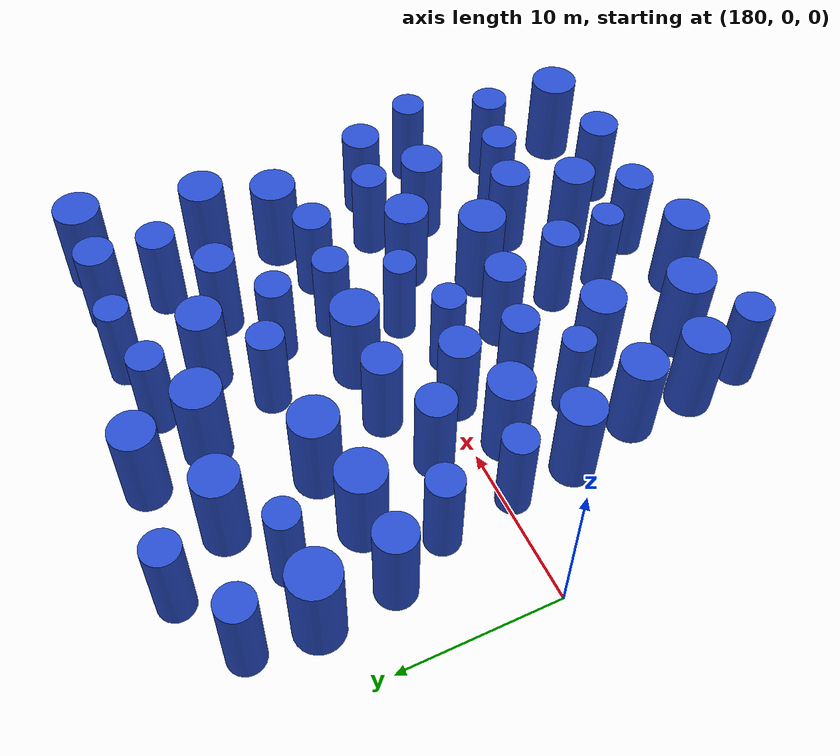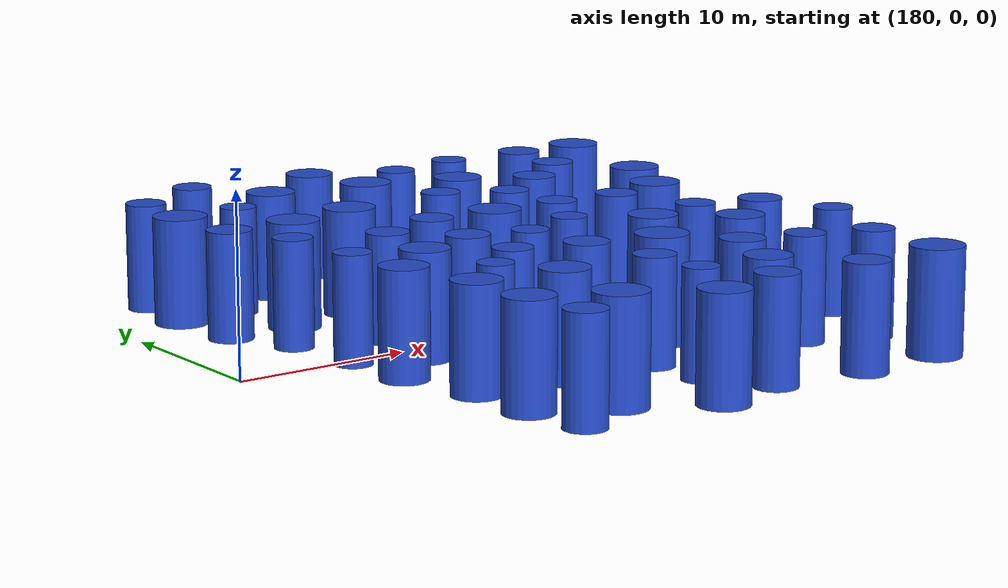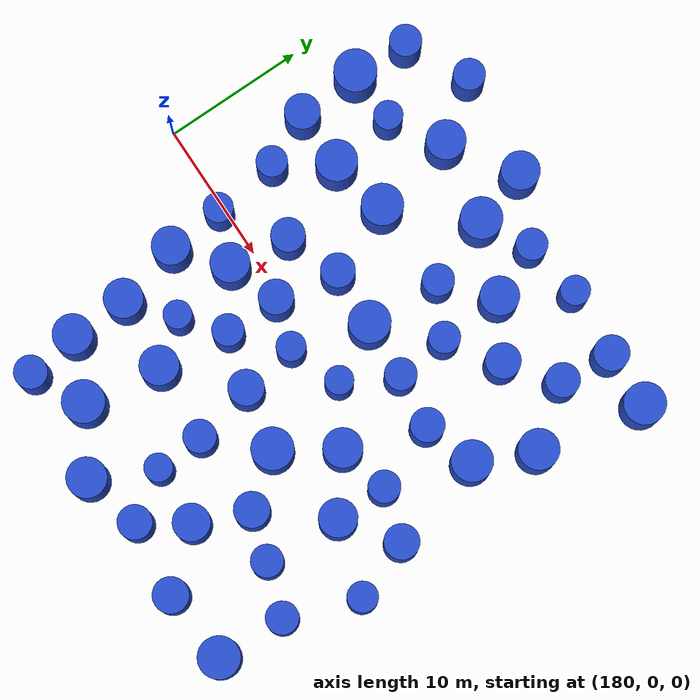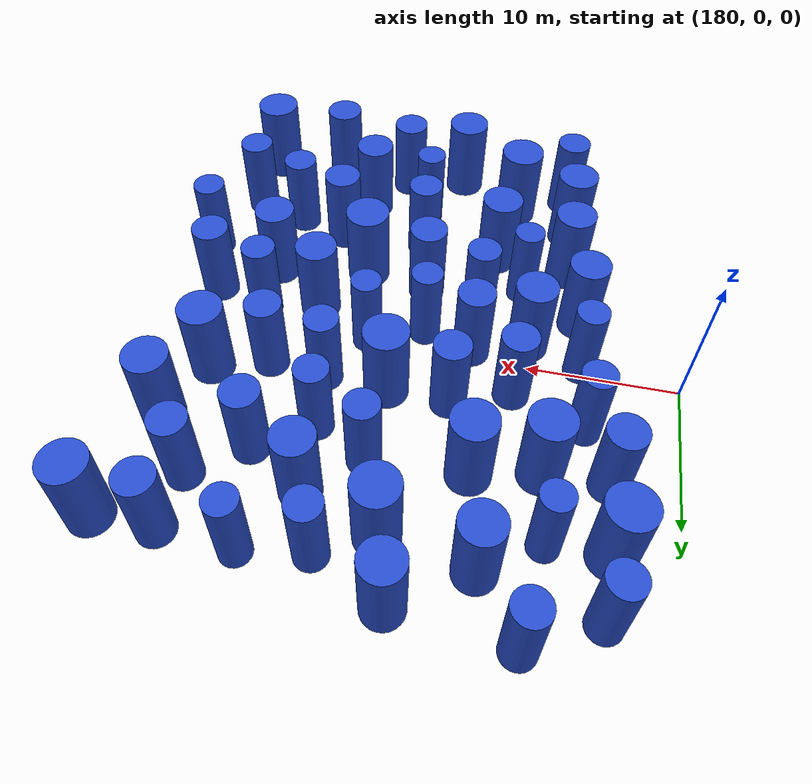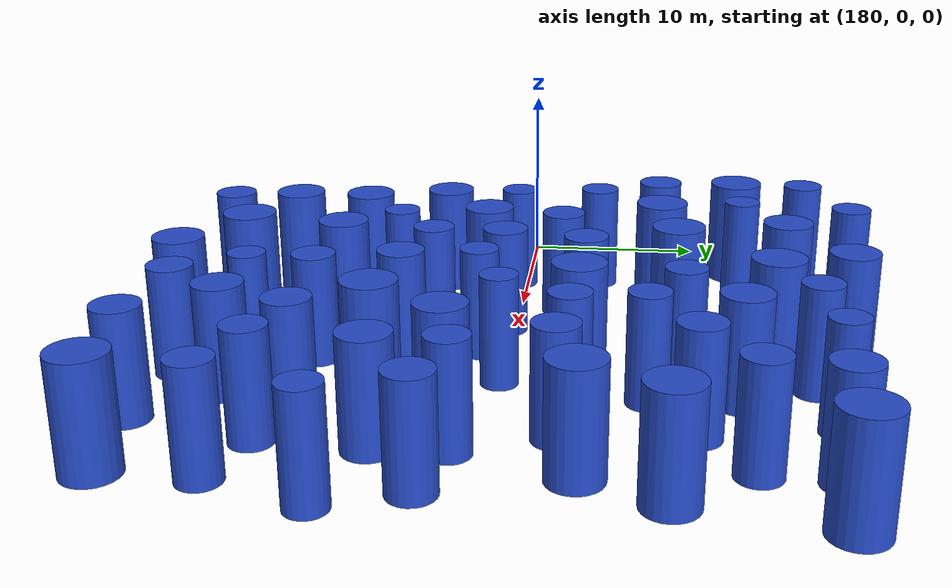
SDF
<sdf version="1.7">
 <world name="default">
  <model name="3">
   <static>1</static>
   <link name="link">
    <inertial>
     <mass>2</mass>
     <inertia><ixx>6.94931</ixx><ixy>0</ixy><ixz>0</ixz><iyy>6.94931</iyy><iyz>0</iyz><izz>1.89861</izz></inertia>
    </inertial>
    <collision name="collision">
     <geometry><cylinder><length>6</length><radius>1.3779</radius></cylinder></geometry>
     <surface><contact><collide_without_contact>1</collide_without_contact></contact></surface>
    </collision>
    <visual name="visual">
     <geometry><cylinder><length>6</length><radius>1.3779</radius></cylinder></geometry>
     <material>
      <script><uri>file://media/materials/scripts/gazebo.material</uri><name>Gazebo/Blue</name></script>
     </material>
    </visual>
    <gravity>0</gravity>
   </link>
   <pose>188.184 -9.29219 3 0 -0 0</pose>
  </model>
  <model name="23">
   <static>1</static>
   <link name="link">
    <inertial>
     <mass>2</mass>
     <inertia><ixx>6.54203</ixx><ixy>0</ixy><ixz>0</ixz><iyy>6.54203</iyy><iyz>0</iyz><izz>1.08407</izz></inertia>
    </inertial>
    <collision name="collision">
     <geometry><cylinder><length>6</length><radius>1.04119</radius></cylinder></geometry>
     <surface><contact><collide_without_contact>1</collide_without_contact></contact></surface>
    </collision>
    <visual name="visual">
     <geometry><cylinder><length>6</length><radius>1.04119</radius></cylinder></geometry>
     <material>
      <script><uri>file://media/materials/scripts/gazebo.material</uri><name>Gazebo/Blue</name></script>
     </material>
    </visual>
    <gravity>0</gravity>
   </link>
   <pose>186.6 -0.514004 3 0 -0 0</pose>
  </model>
  <model name="27">
   <static>1</static>
   <link name="link">
    <inertial>
     <mass>2</mass>
     <inertia><ixx>6.80277</ixx><ixy>0</ixy><ixz>0</ixz><iyy>6.80277</iyy><iyz>0</iyz><izz>1.60554</izz></inertia>
    </inertial>
    <collision name="collision">
     <geometry><cylinder><length>6</length><radius>1.2671</radius></cylinder></geometry>
     <surface><contact><collide_without_contact>1</collide_without_contact></contact></surface>
    </collision>
    <visual name="visual">
     <geometry><cylinder><length>6</length><radius>1.2671</radius></cylinder></geometry>
     <material>
      <script><uri>file://media/materials/scripts/gazebo.material</uri><name>Gazebo/Blue</name></script>
     </material>
    </visual>
    <gravity>0</gravity>
   </link>
   <pose>206.719 -17.7327 3 0 -0 0</pose>
  </model>
  <model name="45">
   <static>1</static>
   <link name="link">
    <inertial>
     <mass>2</mass>
     <inertia><ixx>6.62687</ixx><ixy>0</ixy><ixz>0</ixz><iyy>6.62687</iyy><iyz>0</iyz><izz>1.25375</izz></inertia>
    </inertial>
    <collision name="collision">
     <geometry><cylinder><length>6</length><radius>1.11971</radius></cylinder></geometry>
     <surface><contact><collide_without_contact>1</collide_without_contact></contact></surface>
    </collision>
    <visual name="visual">
     <geometry><cylinder><length>6</length><radius>1.11971</radius></cylinder></geometry>
     <material>
      <script><uri>file://media/materials/scripts/gazebo.material</uri><name>Gazebo/Blue</name></script>
     </material>
    </visual>
    <gravity>0</gravity>
   </link>
   <pose>193.912 -4.58232 3 0 -0 0</pose>
  </model>
  <model name="47">
   <static>1</static>
   <link name="link">
    <inertial>
     <mass>2</mass>
     <inertia><ixx>6.73098</ixx><ixy>0</ixy><ixz>0</ixz><iyy>6.73098</iyy><iyz>0</iyz><izz>1.46195</izz></inertia>
    </inertial>
    <collision name="collision">
     <geometry><cylinder><length>6</length><radius>1.20911</radius></cylinder></geometry>
     <surface><contact><collide_without_contact>1</collide_without_contact></contact></surface>
    </collision>
    <visual name="visual">
     <geometry><cylinder><length>6</length><radius>1.20911</radius></cylinder></geometry>
     <material>
      <script><uri>file://media/materials/scripts/gazebo.material</uri><name>Gazebo/Blue</name></script>
     </material>
    </visual>
    <gravity>0</gravity>
   </link>
   <pose>201.267 -17.0328 3 0 -0 0</pose>
  </model>
  <model name="51">
   <static>1</static>
   <link name="link">
    <inertial>
     <mass>2</mass>
     <inertia><ixx>7.12457</ixx><ixy>0</ixy><ixz>0</ixz><iyy>7.12457</iyy><iyz>0</iyz><izz>2.24913</izz></inertia>
    </inertial>
    <collision name="collision">
     <geometry><cylinder><length>6</length><radius>1.49971</radius></cylinder></geometry>
     <surface><contact><collide_without_contact>1</collide_without_contact></contact></surface>
    </collision>
    <visual name="visual">
     <geometry><cylinder><length>6</length><radius>1.49971</radius></cylinder></geometry>
     <material>
      <script><uri>file://media/materials/scripts/gazebo.material</uri><name>Gazebo/Blue</name></script>
     </material>
    </visual>
    <gravity>0</gravity>
   </link>
   <pose>192.527 -15.412 3 0 -0 0</pose>
  </model>
  <model name="58">
   <static>1</static>
   <link name="link">
    <inertial>
     <mass>2</mass>
     <inertia><ixx>6.79435</ixx><ixy>0</ixy><ixz>0</ixz><iyy>6.79435</iyy><iyz>0</iyz><izz>1.58869</izz></inertia>
    </inertial>
    <collision name="collision">
     <geometry><cylinder><length>6</length><radius>1.26043</radius></cylinder></geometry>
     <surface><contact><collide_without_contact>1</collide_without_contact></contact></surface>
    </collision>
    <visual name="visual">
     <geometry><cylinder><length>6</length><radius>1.26043</radius></cylinder></geometry>
     <material>
      <script><uri>file://media/materials/scripts/gazebo.material</uri><name>Gazebo/Blue</name></script>
     </material>
    </visual>
    <gravity>0</gravity>
   </link>
   <pose>197.855 -5.73232 3 0 -0 0</pose>
  </model>
  <model name="64">
   <static>1</static>
   <link name="link">
    <inertial>
     <mass>2</mass>
     <inertia><ixx>6.68343</ixx><ixy>0</ixy><ixz>0</ixz><iyy>6.68343</iyy><iyz>0</iyz><izz>1.36686</izz></inertia>
    </inertial>
    <collision name="collision">
     <geometry><cylinder><length>6</length><radius>1.16913</radius></cylinder></geometry>
     <surface><contact><collide_without_contact>1</collide_without_contact></contact></surface>
    </collision>
    <visual name="visual">
     <geometry><cylinder><length>6</length><radius>1.16913</radius></cylinder></geometry>
     <material>
      <script><uri>file://media/materials/scripts/gazebo.material</uri><name>Gazebo/Blue</name></script>
     </material>
    </visual>
    <gravity>0</gravity>
   </link>
   <pose>188.88 -17.2791 3 0 -0 0</pose>
  </model>
  <model name="70">
   <static>1</static>
   <link name="link">
    <inertial>
     <mass>2</mass>
     <inertia><ixx>6.76823</ixx><ixy>0</ixy><ixz>0</ixz><iyy>6.76823</iyy><iyz>0</iyz><izz>1.53647</izz></inertia>
    </inertial>
    <collision name="collision">
     <geometry><cylinder><length>6</length><radius>1.23954</radius></cylinder></geometry>
     <surface><contact><collide_without_contact>1</collide_without_contact></contact></surface>
    </collision>
    <visual name="visual">
     <geometry><cylinder><length>6</length><radius>1.23954</radius></cylinder></geometry>
     <material>
      <script><uri>file://media/materials/scripts/gazebo.material</uri><name>Gazebo/Blue</name></script>
     </material>
    </visual>
    <gravity>0</gravity>
   </link>
   <pose>212.384 -2.75646 3 0 -0 0</pose>
  </model>
  <model name="124">
   <static>1</static>
   <link name="link">
    <inertial>
     <mass>2</mass>
     <inertia><ixx>6.75795</ixx><ixy>0</ixy><ixz>0</ixz><iyy>6.75795</iyy><iyz>0</iyz><izz>1.5159</izz></inertia>
    </inertial>
    <collision name="collision">
     <geometry><cylinder><length>6</length><radius>1.23122</radius></cylinder></geometry>
     <surface><contact><collide_without_contact>1</collide_without_contact></contact></surface>
    </collision>
    <visual name="visual">
     <geometry><cylinder><length>6</length><radius>1.23122</radius></cylinder></geometry>
     <material>
      <script><uri>file://media/materials/scripts/gazebo.material</uri><name>Gazebo/Blue</name></script>
     </material>
    </visual>
    <gravity>0</gravity>
   </link>
   <pose>193.853 -0.627328 3 0 -0 0</pose>
  </model>
  <model name="127">
   <static>1</static>
   <link name="link">
    <inertial>
     <mass>2</mass>
     <inertia><ixx>6.7635</ixx><ixy>0</ixy><ixz>0</ixz><iyy>6.7635</iyy><iyz>0</iyz><izz>1.527</izz></inertia>
    </inertial>
    <collision name="collision">
     <geometry><cylinder><length>6</length><radius>1.23572</radius></cylinder></geometry>
     <surface><contact><collide_without_contact>1</collide_without_contact></contact></surface>
    </collision>
    <visual name="visual">
     <geometry><cylinder><length>6</length><radius>1.23572</radius></cylinder></geometry>
     <material>
      <script><uri>file://media/materials/scripts/gazebo.material</uri><name>Gazebo/Blue</name></script>
     </material>
    </visual>
    <gravity>0</gravity>
   </link>
   <pose>206.013 9.7608 3 0 -0 0</pose>
  </model>
  <model name="137">
   <static>1</static>
   <link name="link">
    <inertial>
     <mass>2</mass>
     <inertia><ixx>7.02754</ixx><ixy>0</ixy><ixz>0</ixz><iyy>7.02754</iyy><iyz>0</iyz><izz>2.05508</izz></inertia>
    </inertial>
    <collision name="collision">
     <geometry><cylinder><length>6</length><radius>1.43355</radius></cylinder></geometry>
     <surface><contact><collide_without_contact>1</collide_without_contact></contact></surface>
    </collision>
    <visual name="visual">
     <geometry><cylinder><length>6</length><radius>1.43355</radius></cylinder></geometry>
     <material>
      <script><uri>file://media/materials/scripts/gazebo.material</uri><name>Gazebo/Blue</name></script>
     </material>
    </visual>
    <gravity>0</gravity>
   </link>
   <pose>212.333 8.43288 3 0 -0 0</pose>
  </model>
  <model name="143">
   <static>1</static>
   <link name="link">
    <inertial>
     <mass>2</mass>
     <inertia><ixx>6.59044</ixx><ixy>0</ixy><ixz>0</ixz><iyy>6.59044</iyy><iyz>0</iyz><izz>1.18089</izz></inertia>
    </inertial>
    <collision name="collision">
     <geometry><cylinder><length>6</length><radius>1.08669</radius></cylinder></geometry>
     <surface><contact><collide_without_contact>1</collide_without_contact></contact></surface>
    </collision>
    <visual name="visual">
     <geometry><cylinder><length>6</length><radius>1.08669</radius></cylinder></geometry>
     <material>
      <script><uri>file://media/materials/scripts/gazebo.material</uri><name>Gazebo/Blue</name></script>
     </material>
    </visual>
    <gravity>0</gravity>
   </link>
   <pose>185.993 4.25575 3 0 -0 0</pose>
  </model>
  <model name="147">
   <static>1</static>
   <link name="link">
    <inertial>
     <mass>2</mass>
     <inertia><ixx>6.50194</ixx><ixy>0</ixy><ixz>0</ixz><iyy>6.50194</iyy><iyz>0</iyz><izz>1.00388</izz></inertia>
    </inertial>
    <collision name="collision">
     <geometry><cylinder><length>6</length><radius>1.00194</radius></cylinder></geometry>
     <surface><contact><collide_without_contact>1</collide_without_contact></contact></surface>
    </collision>
    <visual name="visual">
     <geometry><cylinder><length>6</length><radius>1.00194</radius></cylinder></geometry>
     <material>
      <script><uri>file://media/materials/scripts/gazebo.material</uri><name>Gazebo/Blue</name></script>
     </material>
    </visual>
    <gravity>0</gravity>
   </link>
   <pose>199.078 -13.6631 3 0 -0 0</pose>
  </model>
  <model name="163">
   <static>1</static>
   <link name="link">
    <inertial>
     <mass>2</mass>
     <inertia><ixx>6.79264</ixx><ixy>0</ixy><ixz>0</ixz><iyy>6.79264</iyy><iyz>0</iyz><izz>1.58527</izz></inertia>
    </inertial>
    <collision name="collision">
     <geometry><cylinder><length>6</length><radius>1.25908</radius></cylinder></geometry>
     <surface><contact><collide_without_contact>1</collide_without_contact></contact></surface>
    </collision>
    <visual name="visual">
     <geometry><cylinder><length>6</length><radius>1.25908</radius></cylinder></geometry>
     <material>
      <script><uri>file://media/materials/scripts/gazebo.material</uri><name>Gazebo/Blue</name></script>
     </material>
    </visual>
    <gravity>0</gravity>
   </link>
   <pose>204.954 -9.98504 3 0 -0 0</pose>
  </model>
  <model name="168">
   <static>1</static>
   <link name="link">
    <inertial>
     <mass>2</mass>
     <inertia><ixx>6.95218</ixx><ixy>0</ixy><ixz>0</ixz><iyy>6.95218</iyy><iyz>0</iyz><izz>1.90435</izz></inertia>
    </inertial>
    <collision name="collision">
     <geometry><cylinder><length>6</length><radius>1.37998</radius></cylinder></geometry>
     <surface><contact><collide_without_contact>1</collide_without_contact></contact></surface>
    </collision>
    <visual name="visual">
     <geometry><cylinder><length>6</length><radius>1.37998</radius></cylinder></geometry>
     <material>
      <script><uri>file://media/materials/scripts/gazebo.material</uri><name>Gazebo/Blue</name></script>
     </material>
    </visual>
    <gravity>0</gravity>
   </link>
   <pose>191.341 14.9262 3 0 -0 0</pose>
  </model>
  <model name="170">
   <static>1</static>
   <link name="link">
    <inertial>
     <mass>2</mass>
     <inertia><ixx>6.50634</ixx><ixy>0</ixy><ixz>0</ixz><iyy>6.50634</iyy><iyz>0</iyz><izz>1.01268</izz></inertia>
    </inertial>
    <collision name="collision">
     <geometry><cylinder><length>6</length><radius>1.00632</radius></cylinder></geometry>
     <surface><contact><collide_without_contact>1</collide_without_contact></contact></surface>
    </collision>
    <visual name="visual">
     <geometry><cylinder><length>6</length><radius>1.00632</radius></cylinder></geometry>
     <material>
      <script><uri>file://media/materials/scripts/gazebo.material</uri><name>Gazebo/Blue</name></script>
     </material>
    </visual>
    <gravity>0</gravity>
   </link>
   <pose>200.931 -0.201373 3 0 -0 0</pose>
  </model>
  <model name="186">
   <static>1</static>
   <link name="link">
    <inertial>
     <mass>2</mass>
     <inertia><ixx>6.63983</ixx><ixy>0</ixy><ixz>0</ixz><iyy>6.63983</iyy><iyz>0</iyz><izz>1.27967</izz></inertia>
    </inertial>
    <collision name="collision">
     <geometry><cylinder><length>6</length><radius>1.13122</radius></cylinder></geometry>
     <surface><contact><collide_without_contact>1</collide_without_contact></contact></surface>
    </collision>
    <visual name="visual">
     <geometry><cylinder><length>6</length><radius>1.13122</radius></cylinder></geometry>
     <material>
      <script><uri>file://media/materials/scripts/gazebo.material</uri><name>Gazebo/Blue</name></script>
     </material>
    </visual>
    <gravity>0</gravity>
   </link>
   <pose>208.63 -1.66356 3 0 -0 0</pose>
  </model>
  <model name="187">
   <static>1</static>
   <link name="link">
    <inertial>
     <mass>2</mass>
     <inertia><ixx>6.72227</ixx><ixy>0</ixy><ixz>0</ixz><iyy>6.72227</iyy><iyz>0</iyz><izz>1.44454</izz></inertia>
    </inertial>
    <collision name="collision">
     <geometry><cylinder><length>6</length><radius>1.20189</radius></cylinder></geometry>
     <surface><contact><collide_without_contact>1</collide_without_contact></contact></surface>
    </collision>
    <visual name="visual">
     <geometry><cylinder><length>6</length><radius>1.20189</radius></cylinder></geometry>
     <material>
      <script><uri>file://media/materials/scripts/gazebo.material</uri><name>Gazebo/Blue</name></script>
     </material>
    </visual>
    <gravity>0</gravity>
   </link>
   <pose>206.783 3.08303 3 0 -0 0</pose>
  </model>
  <model name="188">
   <static>1</static>
   <link name="link">
    <inertial>
     <mass>2</mass>
     <inertia><ixx>6.65539</ixx><ixy>0</ixy><ixz>0</ixz><iyy>6.65539</iyy><iyz>0</iyz><izz>1.31077</izz></inertia>
    </inertial>
    <collision name="collision">
     <geometry><cylinder><length>6</length><radius>1.14489</radius></cylinder></geometry>
     <surface><contact><collide_without_contact>1</collide_without_contact></contact></surface>
    </collision>
    <visual name="visual">
     <geometry><cylinder><length>6</length><radius>1.14489</radius></cylinder></geometry>
     <material>
      <script><uri>file://media/materials/scripts/gazebo.material</uri><name>Gazebo/Blue</name></script>
     </material>
    </visual>
    <gravity>0</gravity>
   </link>
   <pose>208.407 -11.0454 3 0 -0 0</pose>
  </model>
  <model name="212">
   <static>1</static>
   <link name="link">
    <inertial>
     <mass>2</mass>
     <inertia><ixx>6.53646</ixx><ixy>0</ixy><ixz>0</ixz><iyy>6.53646</iyy><iyz>0</iyz><izz>1.07293</izz></inertia>
    </inertial>
    <collision name="collision">
     <geometry><cylinder><length>6</length><radius>1.03582</radius></cylinder></geometry>
     <surface><contact><collide_without_contact>1</collide_without_contact></contact></surface>
    </collision>
    <visual name="visual">
     <geometry><cylinder><length>6</length><radius>1.03582</radius></cylinder></geometry>
     <material>
      <script><uri>file://media/materials/scripts/gazebo.material</uri><name>Gazebo/Blue</name></script>
     </material>
    </visual>
    <gravity>0</gravity>
   </link>
   <pose>197.213 -1.64808 3 0 -0 0</pose>
  </model>
  <model name="236">
   <static>1</static>
   <link name="link">
    <inertial>
     <mass>2</mass>
     <inertia><ixx>7.08686</ixx><ixy>0</ixy><ixz>0</ixz><iyy>7.08686</iyy><iyz>0</iyz><izz>2.17373</izz></inertia>
    </inertial>
    <collision name="collision">
     <geometry><cylinder><length>6</length><radius>1.47436</radius></cylinder></geometry>
     <surface><contact><collide_without_contact>1</collide_without_contact></contact></surface>
    </collision>
    <visual name="visual">
     <geometry><cylinder><length>6</length><radius>1.47436</radius></cylinder></geometry>
     <material>
      <script><uri>file://media/materials/scripts/gazebo.material</uri><name>Gazebo/Blue</name></script>
     </material>
    </visual>
    <gravity>0</gravity>
   </link>
   <pose>213.735 16.1372 3 0 -0 0</pose>
  </model>
  <model name="237">
   <static>1</static>
   <link name="link">
    <inertial>
     <mass>2</mass>
     <inertia><ixx>6.90912</ixx><ixy>0</ixy><ixz>0</ixz><iyy>6.90912</iyy><iyz>0</iyz><izz>1.81825</izz></inertia>
    </inertial>
    <collision name="collision">
     <geometry><cylinder><length>6</length><radius>1.34842</radius></cylinder></geometry>
     <surface><contact><collide_without_contact>1</collide_without_contact></contact></surface>
    </collision>
    <visual name="visual">
     <geometry><cylinder><length>6</length><radius>1.34842</radius></cylinder></geometry>
     <material>
      <script><uri>file://media/materials/scripts/gazebo.material</uri><name>Gazebo/Blue</name></script>
     </material>
    </visual>
    <gravity>0</gravity>
   </link>
   <pose>195.901 17.9697 3 0 -0 0</pose>
  </model>
  <model name="238">
   <static>1</static>
   <link name="link">
    <inertial>
     <mass>2</mass>
     <inertia><ixx>6.90353</ixx><ixy>0</ixy><ixz>0</ixz><iyy>6.90353</iyy><iyz>0</iyz><izz>1.80707</izz></inertia>
    </inertial>
    <collision name="collision">
     <geometry><cylinder><length>6</length><radius>1.34427</radius></cylinder></geometry>
     <surface><contact><collide_without_contact>1</collide_without_contact></contact></surface>
    </collision>
    <visual name="visual">
     <geometry><cylinder><length>6</length><radius>1.34427</radius></cylinder></geometry>
     <material>
      <script><uri>file://media/materials/scripts/gazebo.material</uri><name>Gazebo/Blue</name></script>
     </material>
    </visual>
    <gravity>0</gravity>
   </link>
   <pose>186.984 -4.63204 3 0 -0 0</pose>
  </model>
  <model name="247">
   <static>1</static>
   <link name="link">
    <inertial>
     <mass>2</mass>
     <inertia><ixx>6.77523</ixx><ixy>0</ixy><ixz>0</ixz><iyy>6.77523</iyy><iyz>0</iyz><izz>1.55045</izz></inertia>
    </inertial>
    <collision name="collision">
     <geometry><cylinder><length>6</length><radius>1.24517</radius></cylinder></geometry>
     <surface><contact><collide_without_contact>1</collide_without_contact></contact></surface>
    </collision>
    <visual name="visual">
     <geometry><cylinder><length>6</length><radius>1.24517</radius></cylinder></geometry>
     <material>
      <script><uri>file://media/materials/scripts/gazebo.material</uri><name>Gazebo/Blue</name></script>
     </material>
    </visual>
    <gravity>0</gravity>
   </link>
   <pose>209.652 16.1756 3 0 -0 0</pose>
  </model>
  <model name="257">
   <static>1</static>
   <link name="link">
    <inertial>
     <mass>2</mass>
     <inertia><ixx>6.6237</ixx><ixy>0</ixy><ixz>0</ixz><iyy>6.6237</iyy><iyz>0</iyz><izz>1.24739</izz></inertia>
    </inertial>
    <collision name="collision">
     <geometry><cylinder><length>6</length><radius>1.11687</radius></cylinder></geometry>
     <surface><contact><collide_without_contact>1</collide_without_contact></contact></surface>
    </collision>
    <visual name="visual">
     <geometry><cylinder><length>6</length><radius>1.11687</radius></cylinder></geometry>
     <material>
      <script><uri>file://media/materials/scripts/gazebo.material</uri><name>Gazebo/Blue</name></script>
     </material>
    </visual>
    <gravity>0</gravity>
   </link>
   <pose>184.16 16.4263 3 0 -0 0</pose>
  </model>
  <model name="269">
   <static>1</static>
   <link name="link">
    <inertial>
     <mass>2</mass>
     <inertia><ixx>6.71047</ixx><ixy>0</ixy><ixz>0</ixz><iyy>6.71047</iyy><iyz>0</iyz><izz>1.42094</izz></inertia>
    </inertial>
    <collision name="collision">
     <geometry><cylinder><length>6</length><radius>1.19203</radius></cylinder></geometry>
     <surface><contact><collide_without_contact>1</collide_without_contact></contact></surface>
    </collision>
    <visual name="visual">
     <geometry><cylinder><length>6</length><radius>1.19203</radius></cylinder></geometry>
     <material>
      <script><uri>file://media/materials/scripts/gazebo.material</uri><name>Gazebo/Blue</name></script>
     </material>
    </visual>
    <gravity>0</gravity>
   </link>
   <pose>190.781 2.39097 3 0 -0 0</pose>
  </model>
  <model name="276">
   <static>1</static>
   <link name="link">
    <inertial>
     <mass>2</mass>
     <inertia><ixx>7.11275</ixx><ixy>0</ixy><ixz>0</ixz><iyy>7.11275</iyy><iyz>0</iyz><izz>2.22551</izz></inertia>
    </inertial>
    <collision name="collision">
     <geometry><cylinder><length>6</length><radius>1.49181</radius></cylinder></geometry>
     <surface><contact><collide_without_contact>1</collide_without_contact></contact></surface>
    </collision>
    <visual name="visual">
     <geometry><cylinder><length>6</length><radius>1.49181</radius></cylinder></geometry>
     <material>
      <script><uri>file://media/materials/scripts/gazebo.material</uri><name>Gazebo/Blue</name></script>
     </material>
    </visual>
    <gravity>0</gravity>
   </link>
   <pose>212.027 -17.3479 3 0 -0 0</pose>
  </model>
  <model name="291">
   <static>1</static>
   <link name="link">
    <inertial>
     <mass>2</mass>
     <inertia><ixx>7.05556</ixx><ixy>0</ixy><ixz>0</ixz><iyy>7.05556</iyy><iyz>0</iyz><izz>2.11111</izz></inertia>
    </inertial>
    <collision name="collision">
     <geometry><cylinder><length>6</length><radius>1.45297</radius></cylinder></geometry>
     <surface><contact><collide_without_contact>1</collide_without_contact></contact></surface>
    </collision>
    <visual name="visual">
     <geometry><cylinder><length>6</length><radius>1.45297</radius></cylinder></geometry>
     <material>
      <script><uri>file://media/materials/scripts/gazebo.material</uri><name>Gazebo/Blue</name></script>
     </material>
    </visual>
    <gravity>0</gravity>
   </link>
   <pose>188.391 7.95404 3 0 -0 0</pose>
  </model>
  <model name="304">
   <static>1</static>
   <link name="link">
    <inertial>
     <mass>2</mass>
     <inertia><ixx>6.62505</ixx><ixy>0</ixy><ixz>0</ixz><iyy>6.62505</iyy><iyz>0</iyz><izz>1.2501</izz></inertia>
    </inertial>
    <collision name="collision">
     <geometry><cylinder><length>6</length><radius>1.11808</radius></cylinder></geometry>
     <surface><contact><collide_without_contact>1</collide_without_contact></contact></surface>
    </collision>
    <visual name="visual">
     <geometry><cylinder><length>6</length><radius>1.11808</radius></cylinder></geometry>
     <material>
      <script><uri>file://media/materials/scripts/gazebo.material</uri><name>Gazebo/Blue</name></script>
     </material>
    </visual>
    <gravity>0</gravity>
   </link>
   <pose>198.999 9.17082 3 0 -0 0</pose>
  </model>
  <model name="312">
   <static>1</static>
   <link name="link">
    <inertial>
     <mass>2</mass>
     <inertia><ixx>6.76869</ixx><ixy>0</ixy><ixz>0</ixz><iyy>6.76869</iyy><iyz>0</iyz><izz>1.53738</izz></inertia>
    </inertial>
    <collision name="collision">
     <geometry><cylinder><length>6</length><radius>1.23991</radius></cylinder></geometry>
     <surface><contact><collide_without_contact>1</collide_without_contact></contact></surface>
    </collision>
    <visual name="visual">
     <geometry><cylinder><length>6</length><radius>1.23991</radius></cylinder></geometry>
     <material>
      <script><uri>file://media/materials/scripts/gazebo.material</uri><name>Gazebo/Blue</name></script>
     </material>
    </visual>
    <gravity>0</gravity>
   </link>
   <pose>184.309 7.87592 3 0 -0 0</pose>
  </model>
  <model name="314">
   <static>1</static>
   <link name="link">
    <inertial>
     <mass>2</mass>
     <inertia><ixx>6.54129</ixx><ixy>0</ixy><ixz>0</ixz><iyy>6.54129</iyy><iyz>0</iyz><izz>1.08257</izz></inertia>
    </inertial>
    <collision name="collision">
     <geometry><cylinder><length>6</length><radius>1.04047</radius></cylinder></geometry>
     <surface><contact><collide_without_contact>1</collide_without_contact></contact></surface>
    </collision>
    <visual name="visual">
     <geometry><cylinder><length>6</length><radius>1.04047</radius></cylinder></geometry>
     <material>
      <script><uri>file://media/materials/scripts/gazebo.material</uri><name>Gazebo/Blue</name></script>
     </material>
    </visual>
    <gravity>0</gravity>
   </link>
   <pose>204.753 16.5056 3 0 -0 0</pose>
  </model>
  <model name="321">
   <static>1</static>
   <link name="link">
    <inertial>
     <mass>2</mass>
     <inertia><ixx>6.7239</ixx><ixy>0</ixy><ixz>0</ixz><iyy>6.7239</iyy><iyz>0</iyz><izz>1.4478</izz></inertia>
    </inertial>
    <collision name="collision">
     <geometry><cylinder><length>6</length><radius>1.20325</radius></cylinder></geometry>
     <surface><contact><collide_without_contact>1</collide_without_contact></contact></surface>
    </collision>
    <visual name="visual">
     <geometry><cylinder><length>6</length><radius>1.20325</radius></cylinder></geometry>
     <material>
      <script><uri>file://media/materials/scripts/gazebo.material</uri><name>Gazebo/Blue</name></script>
     </material>
    </visual>
    <gravity>0</gravity>
   </link>
   <pose>194.678 3.86697 3 0 -0 0</pose>
  </model>
  <model name="323">
   <static>1</static>
   <link name="link">
    <inertial>
     <mass>2</mass>
     <inertia><ixx>7.10612</ixx><ixy>0</ixy><ixz>0</ixz><iyy>7.10612</iyy><iyz>0</iyz><izz>2.21224</izz></inertia>
    </inertial>
    <collision name="collision">
     <geometry><cylinder><length>6</length><radius>1.48736</radius></cylinder></geometry>
     <surface><contact><collide_without_contact>1</collide_without_contact></contact></surface>
    </collision>
    <visual name="visual">
     <geometry><cylinder><length>6</length><radius>1.48736</radius></cylinder></geometry>
     <material>
      <script><uri>file://media/materials/scripts/gazebo.material</uri><name>Gazebo/Blue</name></script>
     </material>
    </visual>
    <gravity>0</gravity>
   </link>
   <pose>183.971 12.4379 3 0 -0 0</pose>
  </model>
  <model name="324">
   <static>1</static>
   <link name="link">
    <inertial>
     <mass>2</mass>
     <inertia><ixx>6.67806</ixx><ixy>0</ixy><ixz>0</ixz><iyy>6.67806</iyy><iyz>0</iyz><izz>1.35611</izz></inertia>
    </inertial>
    <collision name="collision">
     <geometry><cylinder><length>6</length><radius>1.16452</radius></cylinder></geometry>
     <surface><contact><collide_without_contact>1</collide_without_contact></contact></surface>
    </collision>
    <visual name="visual">
     <geometry><cylinder><length>6</length><radius>1.16452</radius></cylinder></geometry>
     <material>
      <script><uri>file://media/materials/scripts/gazebo.material</uri><name>Gazebo/Blue</name></script>
     </material>
    </visual>
    <gravity>0</gravity>
   </link>
   <pose>198.863 -10.1675 3 0 -0 0</pose>
  </model>
  <model name="325">
   <static>1</static>
   <link name="link">
    <inertial>
     <mass>2</mass>
     <inertia><ixx>7.06685</ixx><ixy>0</ixy><ixz>0</ixz><iyy>7.06685</iyy><iyz>0</iyz><izz>2.1337</izz></inertia>
    </inertial>
    <collision name="collision">
     <geometry><cylinder><length>6</length><radius>1.46072</radius></cylinder></geometry>
     <surface><contact><collide_without_contact>1</collide_without_contact></contact></surface>
    </collision>
    <visual name="visual">
     <geometry><cylinder><length>6</length><radius>1.46072</radius></cylinder></geometry>
     <material>
      <script><uri>file://media/materials/scripts/gazebo.material</uri><name>Gazebo/Blue</name></script>
     </material>
    </visual>
    <gravity>0</gravity>
   </link>
   <pose>192.617 8.86953 3 0 -0 0</pose>
  </model>
  <model name="336">
   <static>1</static>
   <link name="link">
    <inertial>
     <mass>2</mass>
     <inertia><ixx>6.9558</ixx><ixy>0</ixy><ixz>0</ixz><iyy>6.9558</iyy><iyz>0</iyz><izz>1.91161</izz></inertia>
    </inertial>
    <collision name="collision">
     <geometry><cylinder><length>6</length><radius>1.38261</radius></cylinder></geometry>
     <surface><contact><collide_without_contact>1</collide_without_contact></contact></surface>
    </collision>
    <visual name="visual">
     <geometry><cylinder><length>6</length><radius>1.38261</radius></cylinder></geometry>
     <material>
      <script><uri>file://media/materials/scripts/gazebo.material</uri><name>Gazebo/Blue</name></script>
     </material>
    </visual>
    <gravity>0</gravity>
   </link>
   <pose>193.331 -9.79646 3 0 -0 0</pose>
  </model>
  <model name="339">
   <static>1</static>
   <link name="link">
    <inertial>
     <mass>2</mass>
     <inertia><ixx>6.917</ixx><ixy>0</ixy><ixz>0</ixz><iyy>6.917</iyy><iyz>0</iyz><izz>1.83399</izz></inertia>
    </inertial>
    <collision name="collision">
     <geometry><cylinder><length>6</length><radius>1.35425</radius></cylinder></geometry>
     <surface><contact><collide_without_contact>1</collide_without_contact></contact></surface>
    </collision>
    <visual name="visual">
     <geometry><cylinder><length>6</length><radius>1.35425</radius></cylinder></geometry>
     <material>
      <script><uri>file://media/materials/scripts/gazebo.material</uri><name>Gazebo/Blue</name></script>
     </material>
    </visual>
    <gravity>0</gravity>
   </link>
   <pose>208.658 -5.44316 3 0 -0 0</pose>
  </model>
  <model name="345">
   <static>1</static>
   <link name="link">
    <inertial>
     <mass>2</mass>
     <inertia><ixx>6.51148</ixx><ixy>0</ixy><ixz>0</ixz><iyy>6.51148</iyy><iyz>0</iyz><izz>1.02295</izz></inertia>
    </inertial>
    <collision name="collision">
     <geometry><cylinder><length>6</length><radius>1.01141</radius></cylinder></geometry>
     <surface><contact><collide_without_contact>1</collide_without_contact></contact></surface>
    </collision>
    <visual name="visual">
     <geometry><cylinder><length>6</length><radius>1.01141</radius></cylinder></geometry>
     <material>
      <script><uri>file://media/materials/scripts/gazebo.material</uri><name>Gazebo/Blue</name></script>
     </material>
    </visual>
    <gravity>0</gravity>
   </link>
   <pose>187.762 12.6002 3 0 -0 0</pose>
  </model>
  <model name="346">
   <static>1</static>
   <link name="link">
    <inertial>
     <mass>2</mass>
     <inertia><ixx>6.95885</ixx><ixy>0</ixy><ixz>0</ixz><iyy>6.95885</iyy><iyz>0</iyz><izz>1.91771</izz></inertia>
    </inertial>
    <collision name="collision">
     <geometry><cylinder><length>6</length><radius>1.38481</radius></cylinder></geometry>
     <surface><contact><collide_without_contact>1</collide_without_contact></contact></surface>
    </collision>
    <visual name="visual">
     <geometry><cylinder><length>6</length><radius>1.38481</radius></cylinder></geometry>
     <material>
      <script><uri>file://media/materials/scripts/gazebo.material</uri><name>Gazebo/Blue</name></script>
     </material>
    </visual>
    <gravity>0</gravity>
   </link>
   <pose>204.89 -2.54889 3 0 -0 0</pose>
  </model>
  <model name="366">
   <static>1</static>
   <link name="link">
    <inertial>
     <mass>2</mass>
     <inertia><ixx>7.00628</ixx><ixy>0</ixy><ixz>0</ixz><iyy>7.00628</iyy><iyz>0</iyz><izz>2.01256</izz></inertia>
    </inertial>
    <collision name="collision">
     <geometry><cylinder><length>6</length><radius>1.41865</radius></cylinder></geometry>
     <surface><contact><collide_without_contact>1</collide_without_contact></contact></surface>
    </collision>
    <visual name="visual">
     <geometry><cylinder><length>6</length><radius>1.41865</radius></cylinder></geometry>
     <material>
      <script><uri>file://media/materials/scripts/gazebo.material</uri><name>Gazebo/Blue</name></script>
     </material>
    </visual>
    <gravity>0</gravity>
   </link>
   <pose>196.947 -18.0725 3 0 -0 0</pose>
  </model>
  <model name="371">
   <static>1</static>
   <link name="link">
    <inertial>
     <mass>2</mass>
     <inertia><ixx>6.61392</ixx><ixy>0</ixy><ixz>0</ixz><iyy>6.61392</iyy><iyz>0</iyz><izz>1.22785</izz></inertia>
    </inertial>
    <collision name="collision">
     <geometry><cylinder><length>6</length><radius>1.10808</radius></cylinder></geometry>
     <surface><contact><collide_without_contact>1</collide_without_contact></contact></surface>
    </collision>
    <visual name="visual">
     <geometry><cylinder><length>6</length><radius>1.10808</radius></cylinder></geometry>
     <material>
      <script><uri>file://media/materials/scripts/gazebo.material</uri><name>Gazebo/Blue</name></script>
     </material>
    </visual>
    <gravity>0</gravity>
   </link>
   <pose>202.474 7.34444 3 0 -0 0</pose>
  </model>
  <model name="392">
   <static>1</static>
   <link name="link">
    <inertial>
     <mass>2</mass>
     <inertia><ixx>6.63415</ixx><ixy>0</ixy><ixz>0</ixz><iyy>6.63415</iyy><iyz>0</iyz><izz>1.26831</izz></inertia>
    </inertial>
    <collision name="collision">
     <geometry><cylinder><length>6</length><radius>1.12619</radius></cylinder></geometry>
     <surface><contact><collide_without_contact>1</collide_without_contact></contact></surface>
    </collision>
    <visual name="visual">
     <geometry><cylinder><length>6</length><radius>1.12619</radius></cylinder></geometry>
     <material>
      <script><uri>file://media/materials/scripts/gazebo.material</uri><name>Gazebo/Blue</name></script>
     </material>
    </visual>
    <gravity>0</gravity>
   </link>
   <pose>202.908 3.49518 3 0 -0 0</pose>
  </model>
  <model name="436">
   <static>1</static>
   <link name="link">
    <inertial>
     <mass>2</mass>
     <inertia><ixx>6.58769</ixx><ixy>0</ixy><ixz>0</ixz><iyy>6.58769</iyy><iyz>0</iyz><izz>1.17539</izz></inertia>
    </inertial>
    <collision name="collision">
     <geometry><cylinder><length>6</length><radius>1.08415</radius></cylinder></geometry>
     <surface><contact><collide_without_contact>1</collide_without_contact></contact></surface>
    </collision>
    <visual name="visual">
     <geometry><cylinder><length>6</length><radius>1.08415</radius></cylinder></geometry>
     <material>
      <script><uri>file://media/materials/scripts/gazebo.material</uri><name>Gazebo/Blue</name></script>
     </material>
    </visual>
    <gravity>0</gravity>
   </link>
   <pose>214.008 -7.02353 3 0 -0 0</pose>
  </model>
  <model name="452">
   <static>1</static>
   <link name="link">
    <inertial>
     <mass>2</mass>
     <inertia><ixx>7.07437</ixx><ixy>0</ixy><ixz>0</ixz><iyy>7.07437</iyy><iyz>0</iyz><izz>2.14875</izz></inertia>
    </inertial>
    <collision name="collision">
     <geometry><cylinder><length>6</length><radius>1.46586</radius></cylinder></geometry>
     <surface><contact><collide_without_contact>1</collide_without_contact></contact></surface>
    </collision>
    <visual name="visual">
     <geometry><cylinder><length>6</length><radius>1.46586</radius></cylinder></geometry>
     <material>
      <script><uri>file://media/materials/scripts/gazebo.material</uri><name>Gazebo/Blue</name></script>
     </material>
    </visual>
    <gravity>0</gravity>
   </link>
   <pose>197.119 13.9533 3 0 -0 0</pose>
  </model>
  <model name="456">
   <static>1</static>
   <link name="link">
    <inertial>
     <mass>2</mass>
     <inertia><ixx>7.0845</ixx><ixy>0</ixy><ixz>0</ixz><iyy>7.0845</iyy><iyz>0</iyz><izz>2.16901</izz></inertia>
    </inertial>
    <collision name="collision">
     <geometry><cylinder><length>6</length><radius>1.47275</radius></cylinder></geometry>
     <surface><contact><collide_without_contact>1</collide_without_contact></contact></surface>
    </collision>
    <visual name="visual">
     <geometry><cylinder><length>6</length><radius>1.47275</radius></cylinder></geometry>
     <material>
      <script><uri>file://media/materials/scripts/gazebo.material</uri><name>Gazebo/Blue</name></script>
     </material>
    </visual>
    <gravity>0</gravity>
   </link>
   <pose>198.788 3.713 3 0 -0 0</pose>
  </model>
  <model name="460">
   <static>1</static>
   <link name="link">
    <inertial>
     <mass>2</mass>
     <inertia><ixx>6.93123</ixx><ixy>0</ixy><ixz>0</ixz><iyy>6.93123</iyy><iyz>0</iyz><izz>1.86247</izz></inertia>
    </inertial>
    <collision name="collision">
     <geometry><cylinder><length>6</length><radius>1.36472</radius></cylinder></geometry>
     <surface><contact><collide_without_contact>1</collide_without_contact></contact></surface>
    </collision>
    <visual name="visual">
     <geometry><cylinder><length>6</length><radius>1.36472</radius></cylinder></geometry>
     <material>
      <script><uri>file://media/materials/scripts/gazebo.material</uri><name>Gazebo/Blue</name></script>
     </material>
    </visual>
    <gravity>0</gravity>
   </link>
   <pose>202.213 12.0287 3 0 -0 0</pose>
  </model>
  <model name="472">
   <static>1</static>
   <link name="link">
    <inertial>
     <mass>2</mass>
     <inertia><ixx>7.10506</ixx><ixy>0</ixy><ixz>0</ixz><iyy>7.10506</iyy><iyz>0</iyz><izz>2.21012</izz></inertia>
    </inertial>
    <collision name="collision">
     <geometry><cylinder><length>6</length><radius>1.48665</radius></cylinder></geometry>
     <surface><contact><collide_without_contact>1</collide_without_contact></contact></surface>
    </collision>
    <visual name="visual">
     <geometry><cylinder><length>6</length><radius>1.48665</radius></cylinder></geometry>
     <material>
      <script><uri>file://media/materials/scripts/gazebo.material</uri><name>Gazebo/Blue</name></script>
     </material>
    </visual>
    <gravity>0</gravity>
   </link>
   <pose>202.293 -6.53675 3 0 -0 0</pose>
  </model>
  <model name="474">
   <static>1</static>
   <link name="link">
    <inertial>
     <mass>2</mass>
     <inertia><ixx>6.86173</ixx><ixy>0</ixy><ixz>0</ixz><iyy>6.86173</iyy><iyz>0</iyz><izz>1.72347</izz></inertia>
    </inertial>
    <collision name="collision">
     <geometry><cylinder><length>6</length><radius>1.31281</radius></cylinder></geometry>
     <surface><contact><collide_without_contact>1</collide_without_contact></contact></surface>
    </collision>
    <visual name="visual">
     <geometry><cylinder><length>6</length><radius>1.31281</radius></cylinder></geometry>
     <material>
      <script><uri>file://media/materials/scripts/gazebo.material</uri><name>Gazebo/Blue</name></script>
     </material>
    </visual>
    <gravity>0</gravity>
   </link>
   <pose>203.401 -13.8576 3 0 -0 0</pose>
  </model>
  <model name="486">
   <static>1</static>
   <link name="link">
    <inertial>
     <mass>2</mass>
     <inertia><ixx>6.72215</ixx><ixy>0</ixy><ixz>0</ixz><iyy>6.72215</iyy><iyz>0</iyz><izz>1.4443</izz></inertia>
    </inertial>
    <collision name="collision">
     <geometry><cylinder><length>6</length><radius>1.20179</radius></cylinder></geometry>
     <surface><contact><collide_without_contact>1</collide_without_contact></contact></surface>
    </collision>
    <visual name="visual">
     <geometry><cylinder><length>6</length><radius>1.20179</radius></cylinder></geometry>
     <material>
      <script><uri>file://media/materials/scripts/gazebo.material</uri><name>Gazebo/Blue</name></script>
     </material>
    </visual>
    <gravity>0</gravity>
   </link>
   <pose>209.336 12.389 3 0 -0 0</pose>
  </model>
  <model name="487">
   <static>1</static>
   <link name="link">
    <inertial>
     <mass>2</mass>
     <inertia><ixx>6.6142</ixx><ixy>0</ixy><ixz>0</ixz><iyy>6.6142</iyy><iyz>0</iyz><izz>1.2284</izz></inertia>
    </inertial>
    <collision name="collision">
     <geometry><cylinder><length>6</length><radius>1.10833</radius></cylinder></geometry>
     <surface><contact><collide_without_contact>1</collide_without_contact></contact></surface>
    </collision>
    <visual name="visual">
     <geometry><cylinder><length>6</length><radius>1.10833</radius></cylinder></geometry>
     <material>
      <script><uri>file://media/materials/scripts/gazebo.material</uri><name>Gazebo/Blue</name></script>
     </material>
    </visual>
    <gravity>0</gravity>
   </link>
   <pose>188.502 18.7375 3 0 -0 0</pose>
  </model>
  <model name="493">
   <static>1</static>
   <link name="link">
    <inertial>
     <mass>2</mass>
     <inertia><ixx>7.05503</ixx><ixy>0</ixy><ixz>0</ixz><iyy>7.05503</iyy><iyz>0</iyz><izz>2.11005</izz></inertia>
    </inertial>
    <collision name="collision">
     <geometry><cylinder><length>6</length><radius>1.4526</radius></cylinder></geometry>
     <surface><contact><collide_without_contact>1</collide_without_contact></contact></surface>
    </collision>
    <visual name="visual">
     <geometry><cylinder><length>6</length><radius>1.4526</radius></cylinder></geometry>
     <material>
      <script><uri>file://media/materials/scripts/gazebo.material</uri><name>Gazebo/Blue</name></script>
     </material>
    </visual>
    <gravity>0</gravity>
   </link>
   <pose>210.489 4.24071 3 0 -0 0</pose>
  </model>
  <model name="498">
   <static>1</static>
   <link name="link">
    <inertial>
     <mass>2</mass>
     <inertia><ixx>6.61338</ixx><ixy>0</ixy><ixz>0</ixz><iyy>6.61338</iyy><iyz>0</iyz><izz>1.22676</izz></inertia>
    </inertial>
    <collision name="collision">
     <geometry><cylinder><length>6</length><radius>1.10759</radius></cylinder></geometry>
     <surface><contact><collide_without_contact>1</collide_without_contact></contact></surface>
    </collision>
    <visual name="visual">
     <geometry><cylinder><length>6</length><radius>1.10759</radius></cylinder></geometry>
     <material>
      <script><uri>file://media/materials/scripts/gazebo.material</uri><name>Gazebo/Blue</name></script>
     </material>
    </visual>
    <gravity>0</gravity>
   </link>
   <pose>200.501 15.8054 3 0 -0 0</pose>
  </model>
  <model name="512">
   <static>1</static>
   <link name="link">
    <inertial>
     <mass>2</mass>
     <inertia><ixx>6.66997</ixx><ixy>0</ixy><ixz>0</ixz><iyy>6.66997</iyy><iyz>0</iyz><izz>1.33994</izz></inertia>
    </inertial>
    <collision name="collision">
     <geometry><cylinder><length>6</length><radius>1.15756</radius></cylinder></geometry>
     <surface><contact><collide_without_contact>1</collide_without_contact></contact></surface>
    </collision>
    <visual name="visual">
     <geometry><cylinder><length>6</length><radius>1.15756</radius></cylinder></geometry>
     <material>
      <script><uri>file://media/materials/scripts/gazebo.material</uri><name>Gazebo/Blue</name></script>
     </material>
    </visual>
    <gravity>0</gravity>
   </link>
   <pose>212.168 -12.3226 3 0 -0 0</pose>
  </model>
  <model name="515">
   <static>1</static>
   <link name="link">
    <inertial>
     <mass>2</mass>
     <inertia><ixx>6.95014</ixx><ixy>0</ixy><ixz>0</ixz><iyy>6.95014</iyy><iyz>0</iyz><izz>1.90029</izz></inertia>
    </inertial>
    <collision name="collision">
     <geometry><cylinder><length>6</length><radius>1.37851</radius></cylinder></geometry>
     <surface><contact><collide_without_contact>1</collide_without_contact></contact></surface>
    </collision>
    <visual name="visual">
     <geometry><cylinder><length>6</length><radius>1.37851</radius></cylinder></geometry>
     <material>
      <script><uri>file://media/materials/scripts/gazebo.material</uri><name>Gazebo/Blue</name></script>
     </material>
    </visual>
    <gravity>0</gravity>
   </link>
   <pose>190.172 -1.92987 3 0 -0 0</pose>
  </model>
  <model name="531">
   <static>1</static>
   <link name="link">
    <inertial>
     <mass>2</mass>
     <inertia><ixx>6.9834</ixx><ixy>0</ixy><ixz>0</ixz><iyy>6.9834</iyy><iyz>0</iyz><izz>1.96679</izz></inertia>
    </inertial>
    <collision name="collision">
     <geometry><cylinder><length>6</length><radius>1.40242</radius></cylinder></geometry>
     <surface><contact><collide_without_contact>1</collide_without_contact></contact></surface>
    </collision>
    <visual name="visual">
     <geometry><cylinder><length>6</length><radius>1.40242</radius></cylinder></geometry>
     <material>
      <script><uri>file://media/materials/scripts/gazebo.material</uri><name>Gazebo/Blue</name></script>
     </material>
    </visual>
    <gravity>0</gravity>
   </link>
   <pose>188.315 -13.4907 3 0 -0 0</pose>
  </model>
  <model name="560">
   <static>1</static>
   <link name="link">
    <inertial>
     <mass>2</mass>
     <inertia><ixx>6.5</ixx><ixy>0</ixy><ixz>0</ixz><iyy>6.5</iyy><iyz>0</iyz><izz>1</izz></inertia>
    </inertial>
    <collision name="collision">
     <geometry><cylinder><length>6</length><radius>1</radius></cylinder></geometry>
     <surface><contact><collide_without_contact>1</collide_without_contact></contact></surface>
    </collision>
    <visual name="visual">
     <geometry><cylinder><length>6</length><radius>1</radius></cylinder></geometry>
     <material>
      <script><uri>file://media/materials/scripts/gazebo.material</uri><name>Gazebo/Blue</name></script>
     </material>
    </visual>
    <gravity>0</gravity>
   </link>
   <pose>191.142 -6.84216 3 0 -0 0</pose>
  </model>
 </world>
</sdf>
